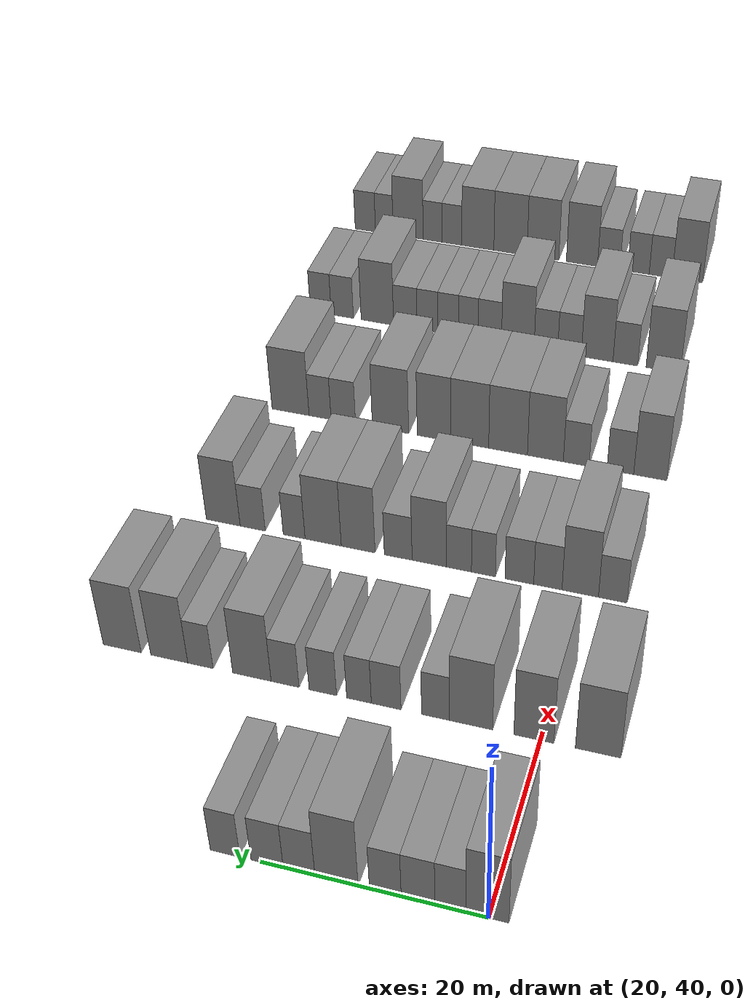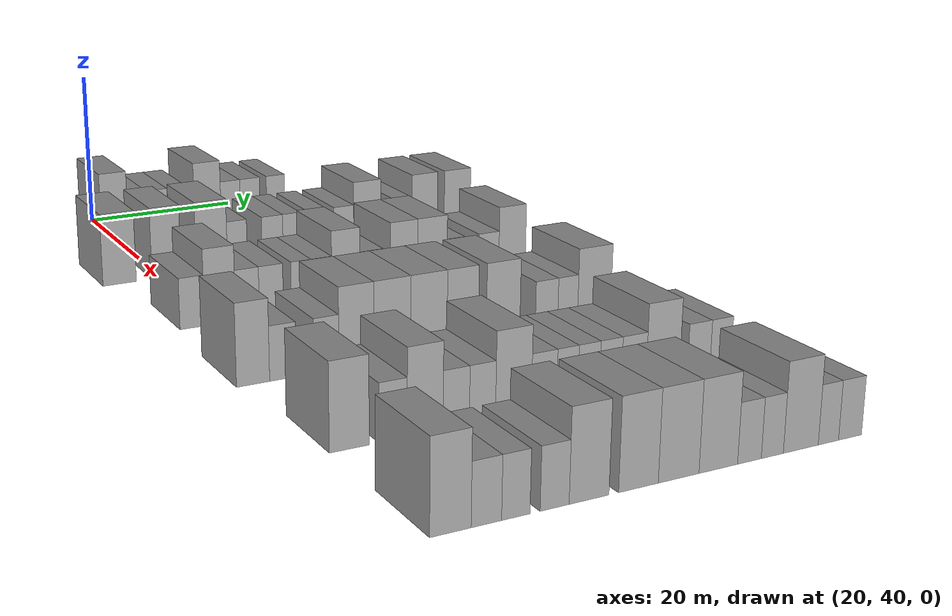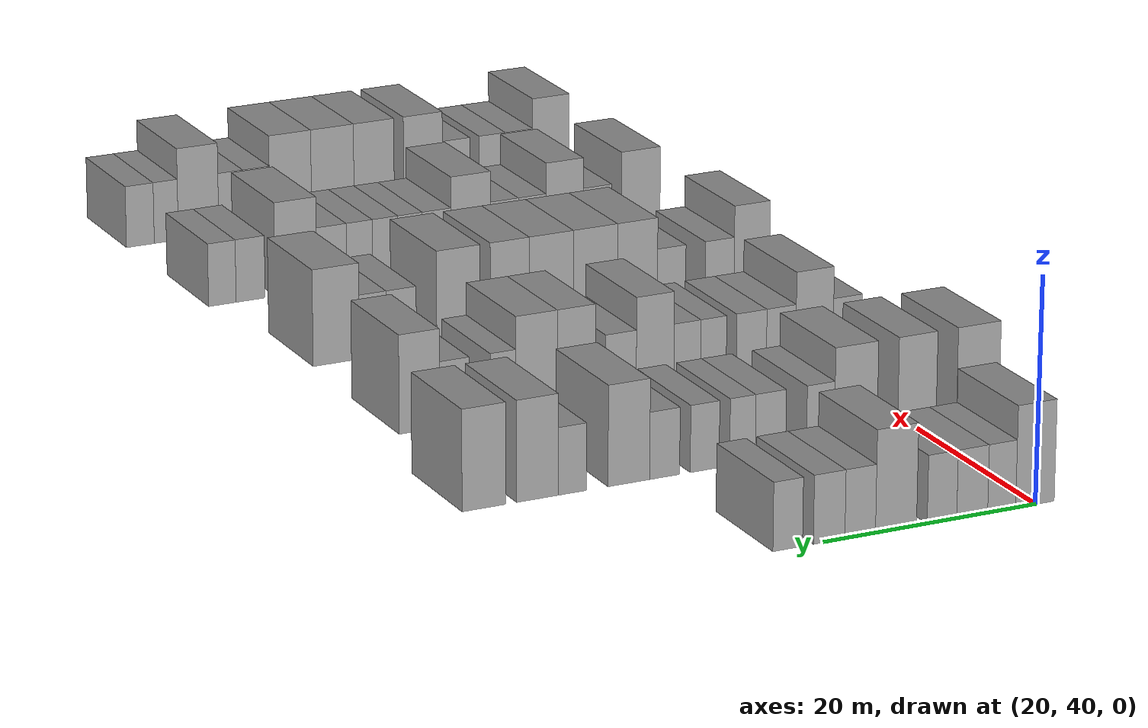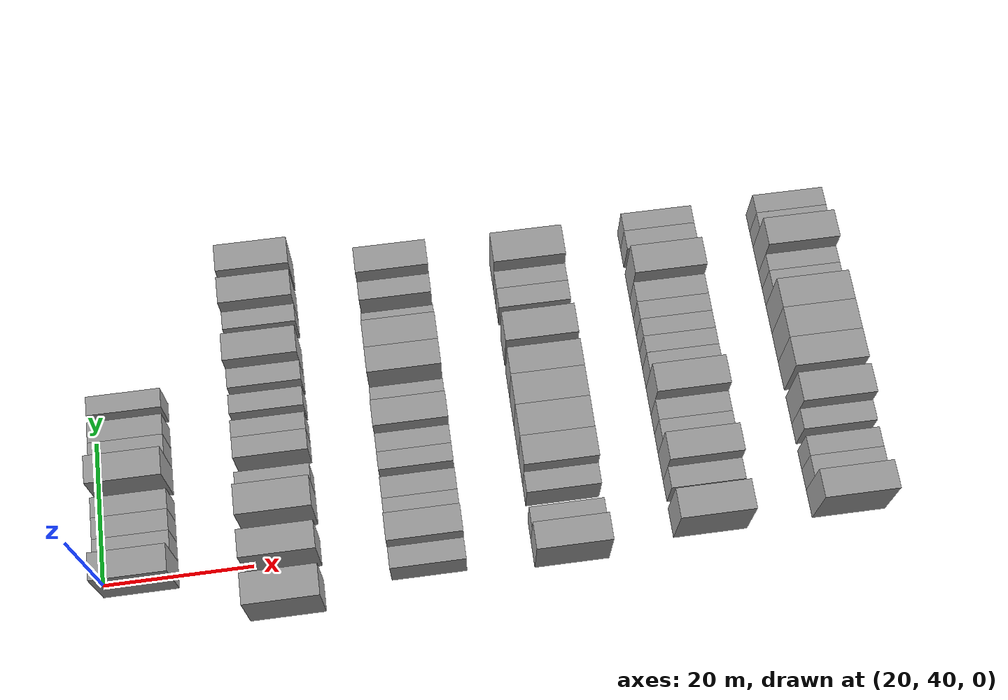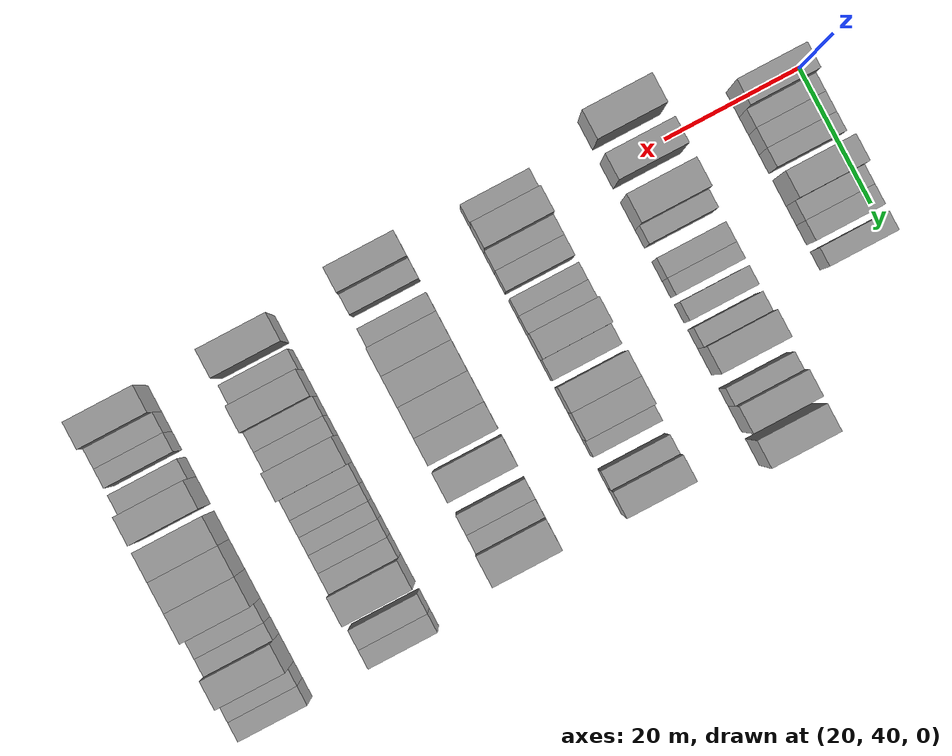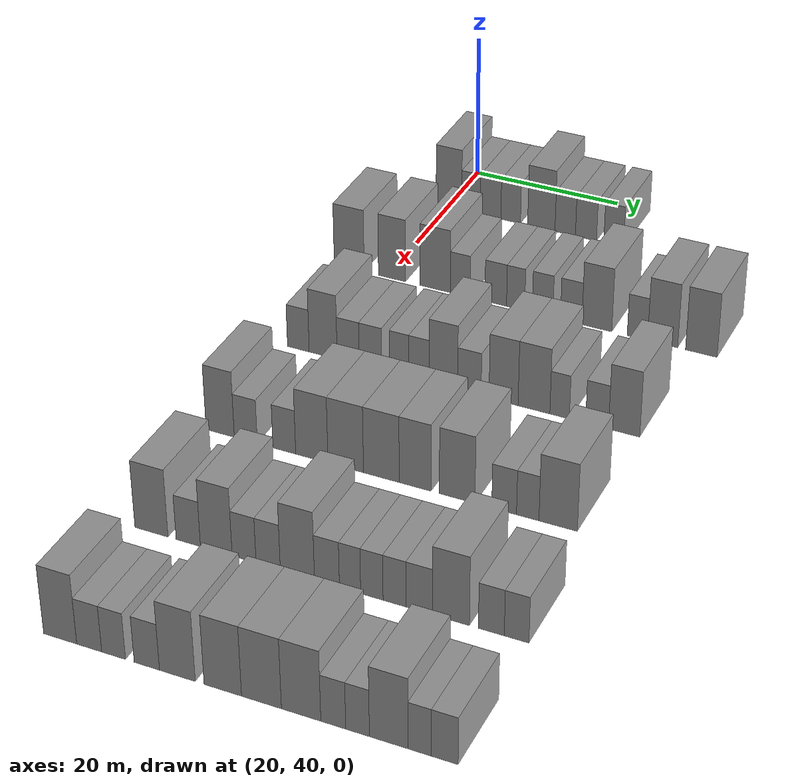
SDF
<sdf version="1.6">
 <world name="default">
  <model name="building_88">
   <static>1</static>
   <pose>25.0000 40.1347 0 0.000000 0.000000 0.000000</pose>
   <link name="link">
    <pose>0 0 4.50 0 0 0</pose>
    <collision name="collision"><geometry><box><size>10.0000 3.6821 9.0000</size></box></geometry></collision>
    <visual name="visual">
     <cast_shadows>0</cast_shadows>
     <geometry><box><size>10.0000 3.6821 9.0000</size></box></geometry>
     <material>
      <script>
       <uri>model://grey_wall/materials/scripts</uri>
       <uri>model://grey_wall/materials/textures</uri>
       <name>vrc/grey_wall</name>
      </script>
     </material>
    </visual>
   </link>
  </model>
  <model name="building_89">
   <static>1</static>
   <pose>25.0000 43.3047 0 0.000000 0.000000 0.000000</pose>
   <link name="link">
    <pose>0 0 3.00 0 0 0</pose>
    <collision name="collision"><geometry><box><size>10.0000 2.6580 6.0000</size></box></geometry></collision>
    <visual name="visual">
     <cast_shadows>0</cast_shadows>
     <geometry><box><size>10.0000 2.6580 6.0000</size></box></geometry>
     <material>
      <script>
       <uri>model://grey_wall/materials/scripts</uri>
       <uri>model://grey_wall/materials/textures</uri>
       <name>vrc/grey_wall</name>
      </script>
     </material>
    </visual>
   </link>
  </model>
  <model name="building_90">
   <static>1</static>
   <pose>25.0000 46.0963 0 0.000000 0.000000 0.000000</pose>
   <link name="link">
    <pose>0 0 3.00 0 0 0</pose>
    <collision name="collision"><geometry><box><size>10.0000 2.9250 6.0000</size></box></geometry></collision>
    <visual name="visual">
     <cast_shadows>0</cast_shadows>
     <geometry><box><size>10.0000 2.9250 6.0000</size></box></geometry>
     <material>
      <script>
       <uri>model://grey_wall/materials/scripts</uri>
       <uri>model://grey_wall/materials/textures</uri>
       <name>vrc/grey_wall</name>
      </script>
     </material>
    </visual>
   </link>
  </model>
  <model name="building_91">
   <static>1</static>
   <pose>25.0000 48.9484 0 0.000000 0.000000 0.000000</pose>
   <link name="link">
    <pose>0 0 3.00 0 0 0</pose>
    <collision name="collision"><geometry><box><size>10.0000 2.7791 6.0000</size></box></geometry></collision>
    <visual name="visual">
     <cast_shadows>0</cast_shadows>
     <geometry><box><size>10.0000 2.7791 6.0000</size></box></geometry>
     <material>
      <script>
       <uri>model://grey_wall/materials/scripts</uri>
       <uri>model://grey_wall/materials/textures</uri>
       <name>vrc/grey_wall</name>
      </script>
     </material>
    </visual>
   </link>
  </model>
  <model name="building_92">
   <static>1</static>
   <pose>25.0000 53.2542 0 0.000000 0.000000 0.000000</pose>
   <link name="link">
    <pose>0 0 4.50 0 0 0</pose>
    <collision name="collision"><geometry><box><size>10.0000 3.8325 9.0000</size></box></geometry></collision>
    <visual name="visual">
     <cast_shadows>0</cast_shadows>
     <geometry><box><size>10.0000 3.8325 9.0000</size></box></geometry>
     <material>
      <script>
       <uri>model://grey_wall/materials/scripts</uri>
       <uri>model://grey_wall/materials/textures</uri>
       <name>vrc/grey_wall</name>
      </script>
     </material>
    </visual>
   </link>
  </model>
  <model name="building_93">
   <static>1</static>
   <pose>25.0000 56.5913 0 0.000000 0.000000 0.000000</pose>
   <link name="link">
    <pose>0 0 3.00 0 0 0</pose>
    <collision name="collision"><geometry><box><size>10.0000 2.8417 6.0000</size></box></geometry></collision>
    <visual name="visual">
     <cast_shadows>0</cast_shadows>
     <geometry><box><size>10.0000 2.8417 6.0000</size></box></geometry>
     <material>
      <script>
       <uri>model://grey_wall/materials/scripts</uri>
       <uri>model://grey_wall/materials/textures</uri>
       <name>vrc/grey_wall</name>
      </script>
     </material>
    </visual>
   </link>
  </model>
  <model name="building_94">
   <static>1</static>
   <pose>25.0000 59.4693 0 0.000000 0.000000 0.000000</pose>
   <link name="link">
    <pose>0 0 3.00 0 0 0</pose>
    <collision name="collision"><geometry><box><size>10.0000 2.9143 6.0000</size></box></geometry></collision>
    <visual name="visual">
     <cast_shadows>0</cast_shadows>
     <geometry><box><size>10.0000 2.9143 6.0000</size></box></geometry>
     <material>
      <script>
       <uri>model://grey_wall/materials/scripts</uri>
       <uri>model://grey_wall/materials/textures</uri>
       <name>vrc/grey_wall</name>
      </script>
     </material>
    </visual>
   </link>
  </model>
  <model name="building_95">
   <static>1</static>
   <pose>25.0000 63.2848 0 0.000000 0.000000 0.000000</pose>
   <link name="link">
    <pose>0 0 3.00 0 0 0</pose>
    <collision name="collision"><geometry><box><size>10.0000 2.7167 6.0000</size></box></geometry></collision>
    <visual name="visual">
     <cast_shadows>0</cast_shadows>
     <geometry><box><size>10.0000 2.7167 6.0000</size></box></geometry>
     <material>
      <script>
       <uri>model://grey_wall/materials/scripts</uri>
       <uri>model://grey_wall/materials/textures</uri>
       <name>vrc/grey_wall</name>
      </script>
     </material>
    </visual>
   </link>
  </model>
  <model name="building_251">
   <static>1</static>
   <pose>44.0000 34.7093 0 0.000000 0.000000 0.000000</pose>
   <link name="link">
    <pose>0 0 4.50 0 0 0</pose>
    <collision name="collision"><geometry><box><size>10.0000 4.2011 9.0000</size></box></geometry></collision>
    <visual name="visual">
     <cast_shadows>0</cast_shadows>
     <geometry><box><size>10.0000 4.2011 9.0000</size></box></geometry>
     <material>
      <script>
       <uri>model://grey_wall/materials/scripts</uri>
       <uri>model://grey_wall/materials/textures</uri>
       <name>vrc/grey_wall</name>
      </script>
     </material>
    </visual>
   </link>
  </model>
  <model name="building_252">
   <static>1</static>
   <pose>44.0000 40.6884 0 0.000000 0.000000 0.000000</pose>
   <link name="link">
    <pose>0 0 4.50 0 0 0</pose>
    <collision name="collision"><geometry><box><size>10.0000 3.7571 9.0000</size></box></geometry></collision>
    <visual name="visual">
     <cast_shadows>0</cast_shadows>
     <geometry><box><size>10.0000 3.7571 9.0000</size></box></geometry>
     <material>
      <script>
       <uri>model://grey_wall/materials/scripts</uri>
       <uri>model://grey_wall/materials/textures</uri>
       <name>vrc/grey_wall</name>
      </script>
     </material>
    </visual>
   </link>
  </model>
  <model name="building_253">
   <static>1</static>
   <pose>44.0000 46.6342 0 0.000000 0.000000 0.000000</pose>
   <link name="link">
    <pose>0 0 4.50 0 0 0</pose>
    <collision name="collision"><geometry><box><size>10.0000 4.1346 9.0000</size></box></geometry></collision>
    <visual name="visual">
     <cast_shadows>0</cast_shadows>
     <geometry><box><size>10.0000 4.1346 9.0000</size></box></geometry>
     <material>
      <script>
       <uri>model://grey_wall/materials/scripts</uri>
       <uri>model://grey_wall/materials/textures</uri>
       <name>vrc/grey_wall</name>
      </script>
     </material>
    </visual>
   </link>
  </model>
  <model name="building_254">
   <static>1</static>
   <pose>44.0000 50.0399 0 0.000000 0.000000 0.000000</pose>
   <link name="link">
    <pose>0 0 3.00 0 0 0</pose>
    <collision name="collision"><geometry><box><size>10.0000 2.6768 6.0000</size></box></geometry></collision>
    <visual name="visual">
     <cast_shadows>0</cast_shadows>
     <geometry><box><size>10.0000 2.6768 6.0000</size></box></geometry>
     <material>
      <script>
       <uri>model://grey_wall/materials/scripts</uri>
       <uri>model://grey_wall/materials/textures</uri>
       <name>vrc/grey_wall</name>
      </script>
     </material>
    </visual>
   </link>
  </model>
  <model name="building_255">
   <static>1</static>
   <pose>44.0000 54.8276 0 0.000000 0.000000 0.000000</pose>
   <link name="link">
    <pose>0 0 3.00 0 0 0</pose>
    <collision name="collision"><geometry><box><size>10.0000 2.8987 6.0000</size></box></geometry></collision>
    <visual name="visual">
     <cast_shadows>0</cast_shadows>
     <geometry><box><size>10.0000 2.8987 6.0000</size></box></geometry>
     <material>
      <script>
       <uri>model://grey_wall/materials/scripts</uri>
       <uri>model://grey_wall/materials/textures</uri>
       <name>vrc/grey_wall</name>
      </script>
     </material>
    </visual>
   </link>
  </model>
  <model name="building_256">
   <static>1</static>
   <pose>44.0000 57.4905 0 0.000000 0.000000 0.000000</pose>
   <link name="link">
    <pose>0 0 3.00 0 0 0</pose>
    <collision name="collision"><geometry><box><size>10.0000 2.4271 6.0000</size></box></geometry></collision>
    <visual name="visual">
     <cast_shadows>0</cast_shadows>
     <geometry><box><size>10.0000 2.4271 6.0000</size></box></geometry>
     <material>
      <script>
       <uri>model://grey_wall/materials/scripts</uri>
       <uri>model://grey_wall/materials/textures</uri>
       <name>vrc/grey_wall</name>
      </script>
     </material>
    </visual>
   </link>
  </model>
  <model name="building_257">
   <static>1</static>
   <pose>44.0000 61.0678 0 0.000000 0.000000 0.000000</pose>
   <link name="link">
    <pose>0 0 3.00 0 0 0</pose>
    <collision name="collision"><geometry><box><size>10.0000 2.7275 6.0000</size></box></geometry></collision>
    <visual name="visual">
     <cast_shadows>0</cast_shadows>
     <geometry><box><size>10.0000 2.7275 6.0000</size></box></geometry>
     <material>
      <script>
       <uri>model://grey_wall/materials/scripts</uri>
       <uri>model://grey_wall/materials/textures</uri>
       <name>vrc/grey_wall</name>
      </script>
     </material>
    </visual>
   </link>
  </model>
  <model name="building_258">
   <static>1</static>
   <pose>44.0000 64.8363 0 0.000000 0.000000 0.000000</pose>
   <link name="link">
    <pose>0 0 3.00 0 0 0</pose>
    <collision name="collision"><geometry><box><size>10.0000 2.8095 6.0000</size></box></geometry></collision>
    <visual name="visual">
     <cast_shadows>0</cast_shadows>
     <geometry><box><size>10.0000 2.8095 6.0000</size></box></geometry>
     <material>
      <script>
       <uri>model://grey_wall/materials/scripts</uri>
       <uri>model://grey_wall/materials/textures</uri>
       <name>vrc/grey_wall</name>
      </script>
     </material>
    </visual>
   </link>
  </model>
  <model name="building_259">
   <static>1</static>
   <pose>44.0000 68.1875 0 0.000000 0.000000 0.000000</pose>
   <link name="link">
    <pose>0 0 4.50 0 0 0</pose>
    <collision name="collision"><geometry><box><size>10.0000 3.8930 9.0000</size></box></geometry></collision>
    <visual name="visual">
     <cast_shadows>0</cast_shadows>
     <geometry><box><size>10.0000 3.8930 9.0000</size></box></geometry>
     <material>
      <script>
       <uri>model://grey_wall/materials/scripts</uri>
       <uri>model://grey_wall/materials/textures</uri>
       <name>vrc/grey_wall</name>
      </script>
     </material>
    </visual>
   </link>
  </model>
  <model name="building_260">
   <static>1</static>
   <pose>44.0000 73.4386 0 0.000000 0.000000 0.000000</pose>
   <link name="link">
    <pose>0 0 3.00 0 0 0</pose>
    <collision name="collision"><geometry><box><size>10.0000 2.6091 6.0000</size></box></geometry></collision>
    <visual name="visual">
     <cast_shadows>0</cast_shadows>
     <geometry><box><size>10.0000 2.6091 6.0000</size></box></geometry>
     <material>
      <script>
       <uri>model://grey_wall/materials/scripts</uri>
       <uri>model://grey_wall/materials/textures</uri>
       <name>vrc/grey_wall</name>
      </script>
     </material>
    </visual>
   </link>
  </model>
  <model name="building_261">
   <static>1</static>
   <pose>44.0000 76.6648 0 0.000000 0.000000 0.000000</pose>
   <link name="link">
    <pose>0 0 4.50 0 0 0</pose>
    <collision name="collision"><geometry><box><size>10.0000 3.8433 9.0000</size></box></geometry></collision>
    <visual name="visual">
     <cast_shadows>0</cast_shadows>
     <geometry><box><size>10.0000 3.8433 9.0000</size></box></geometry>
     <material>
      <script>
       <uri>model://grey_wall/materials/scripts</uri>
       <uri>model://grey_wall/materials/textures</uri>
       <name>vrc/grey_wall</name>
      </script>
     </material>
    </visual>
   </link>
  </model>
  <model name="building_262">
   <static>1</static>
   <pose>44.0000 81.5735 0 0.000000 0.000000 0.000000</pose>
   <link name="link">
    <pose>0 0 4.50 0 0 0</pose>
    <collision name="collision"><geometry><box><size>10.0000 3.9742 9.0000</size></box></geometry></collision>
    <visual name="visual">
     <cast_shadows>0</cast_shadows>
     <geometry><box><size>10.0000 3.9742 9.0000</size></box></geometry>
     <material>
      <script>
       <uri>model://grey_wall/materials/scripts</uri>
       <uri>model://grey_wall/materials/textures</uri>
       <name>vrc/grey_wall</name>
      </script>
     </material>
    </visual>
   </link>
  </model>
  <model name="building_434">
   <static>1</static>
   <pose>63.0000 37.0902 0 0.000000 0.000000 0.000000</pose>
   <link name="link">
    <pose>0 0 3.00 0 0 0</pose>
    <collision name="collision"><geometry><box><size>10.0000 2.9083 6.0000</size></box></geometry></collision>
    <visual name="visual">
     <cast_shadows>0</cast_shadows>
     <geometry><box><size>10.0000 2.9083 6.0000</size></box></geometry>
     <material>
      <script>
       <uri>model://grey_wall/materials/scripts</uri>
       <uri>model://grey_wall/materials/textures</uri>
       <name>vrc/grey_wall</name>
      </script>
     </material>
    </visual>
   </link>
  </model>
  <model name="building_435">
   <static>1</static>
   <pose>63.0000 40.4109 0 0.000000 0.000000 0.000000</pose>
   <link name="link">
    <pose>0 0 4.50 0 0 0</pose>
    <collision name="collision"><geometry><box><size>10.0000 3.7331 9.0000</size></box></geometry></collision>
    <visual name="visual">
     <cast_shadows>0</cast_shadows>
     <geometry><box><size>10.0000 3.7331 9.0000</size></box></geometry>
     <material>
      <script>
       <uri>model://grey_wall/materials/scripts</uri>
       <uri>model://grey_wall/materials/textures</uri>
       <name>vrc/grey_wall</name>
      </script>
     </material>
    </visual>
   </link>
  </model>
  <model name="building_436">
   <static>1</static>
   <pose>63.0000 43.7369 0 0.000000 0.000000 0.000000</pose>
   <link name="link">
    <pose>0 0 3.00 0 0 0</pose>
    <collision name="collision"><geometry><box><size>10.0000 2.9188 6.0000</size></box></geometry></collision>
    <visual name="visual">
     <cast_shadows>0</cast_shadows>
     <geometry><box><size>10.0000 2.9188 6.0000</size></box></geometry>
     <material>
      <script>
       <uri>model://grey_wall/materials/scripts</uri>
       <uri>model://grey_wall/materials/textures</uri>
       <name>vrc/grey_wall</name>
      </script>
     </material>
    </visual>
   </link>
  </model>
  <model name="building_437">
   <static>1</static>
   <pose>63.0000 46.6870 0 0.000000 0.000000 0.000000</pose>
   <link name="link">
    <pose>0 0 3.00 0 0 0</pose>
    <collision name="collision"><geometry><box><size>10.0000 2.9813 6.0000</size></box></geometry></collision>
    <visual name="visual">
     <cast_shadows>0</cast_shadows>
     <geometry><box><size>10.0000 2.9813 6.0000</size></box></geometry>
     <material>
      <script>
       <uri>model://grey_wall/materials/scripts</uri>
       <uri>model://grey_wall/materials/textures</uri>
       <name>vrc/grey_wall</name>
      </script>
     </material>
    </visual>
   </link>
  </model>
  <model name="building_438">
   <static>1</static>
   <pose>63.0000 50.4399 0 0.000000 0.000000 0.000000</pose>
   <link name="link">
    <pose>0 0 3.00 0 0 0</pose>
    <collision name="collision"><geometry><box><size>10.0000 2.5245 6.0000</size></box></geometry></collision>
    <visual name="visual">
     <cast_shadows>0</cast_shadows>
     <geometry><box><size>10.0000 2.5245 6.0000</size></box></geometry>
     <material>
      <script>
       <uri>model://grey_wall/materials/scripts</uri>
       <uri>model://grey_wall/materials/textures</uri>
       <name>vrc/grey_wall</name>
      </script>
     </material>
    </visual>
   </link>
  </model>
  <model name="building_439">
   <static>1</static>
   <pose>63.0000 53.0123 0 0.000000 0.000000 0.000000</pose>
   <link name="link">
    <pose>0 0 3.00 0 0 0</pose>
    <collision name="collision"><geometry><box><size>10.0000 2.6203 6.0000</size></box></geometry></collision>
    <visual name="visual">
     <cast_shadows>0</cast_shadows>
     <geometry><box><size>10.0000 2.6203 6.0000</size></box></geometry>
     <material>
      <script>
       <uri>model://grey_wall/materials/scripts</uri>
       <uri>model://grey_wall/materials/textures</uri>
       <name>vrc/grey_wall</name>
      </script>
     </material>
    </visual>
   </link>
  </model>
  <model name="building_440">
   <static>1</static>
   <pose>63.0000 56.1586 0 0.000000 0.000000 0.000000</pose>
   <link name="link">
    <pose>0 0 4.50 0 0 0</pose>
    <collision name="collision"><geometry><box><size>10.0000 3.6724 9.0000</size></box></geometry></collision>
    <visual name="visual">
     <cast_shadows>0</cast_shadows>
     <geometry><box><size>10.0000 3.6724 9.0000</size></box></geometry>
     <material>
      <script>
       <uri>model://grey_wall/materials/scripts</uri>
       <uri>model://grey_wall/materials/textures</uri>
       <name>vrc/grey_wall</name>
      </script>
     </material>
    </visual>
   </link>
  </model>
  <model name="building_441">
   <static>1</static>
   <pose>63.0000 59.4880 0 0.000000 0.000000 0.000000</pose>
   <link name="link">
    <pose>0 0 3.00 0 0 0</pose>
    <collision name="collision"><geometry><box><size>10.0000 2.9863 6.0000</size></box></geometry></collision>
    <visual name="visual">
     <cast_shadows>0</cast_shadows>
     <geometry><box><size>10.0000 2.9863 6.0000</size></box></geometry>
     <material>
      <script>
       <uri>model://grey_wall/materials/scripts</uri>
       <uri>model://grey_wall/materials/textures</uri>
       <name>vrc/grey_wall</name>
      </script>
     </material>
    </visual>
   </link>
  </model>
  <model name="building_442">
   <static>1</static>
   <pose>63.0000 63.8151 0 0.000000 0.000000 0.000000</pose>
   <link name="link">
    <pose>0 0 4.50 0 0 0</pose>
    <collision name="collision"><geometry><box><size>10.0000 3.6678 9.0000</size></box></geometry></collision>
    <visual name="visual">
     <cast_shadows>0</cast_shadows>
     <geometry><box><size>10.0000 3.6678 9.0000</size></box></geometry>
     <material>
      <script>
       <uri>model://grey_wall/materials/scripts</uri>
       <uri>model://grey_wall/materials/textures</uri>
       <name>vrc/grey_wall</name>
      </script>
     </material>
    </visual>
   </link>
  </model>
  <model name="building_443">
   <static>1</static>
   <pose>63.0000 67.6348 0 0.000000 0.000000 0.000000</pose>
   <link name="link">
    <pose>0 0 4.50 0 0 0</pose>
    <collision name="collision"><geometry><box><size>10.0000 3.9717 9.0000</size></box></geometry></collision>
    <visual name="visual">
     <cast_shadows>0</cast_shadows>
     <geometry><box><size>10.0000 3.9717 9.0000</size></box></geometry>
     <material>
      <script>
       <uri>model://grey_wall/materials/scripts</uri>
       <uri>model://grey_wall/materials/textures</uri>
       <name>vrc/grey_wall</name>
      </script>
     </material>
    </visual>
   </link>
  </model>
  <model name="building_444">
   <static>1</static>
   <pose>63.0000 70.8278 0 0.000000 0.000000 0.000000</pose>
   <link name="link">
    <pose>0 0 3.00 0 0 0</pose>
    <collision name="collision"><geometry><box><size>10.0000 2.4143 6.0000</size></box></geometry></collision>
    <visual name="visual">
     <cast_shadows>0</cast_shadows>
     <geometry><box><size>10.0000 2.4143 6.0000</size></box></geometry>
     <material>
      <script>
       <uri>model://grey_wall/materials/scripts</uri>
       <uri>model://grey_wall/materials/textures</uri>
       <name>vrc/grey_wall</name>
      </script>
     </material>
    </visual>
   </link>
  </model>
  <model name="building_445">
   <static>1</static>
   <pose>63.0000 75.4388 0 0.000000 0.000000 0.000000</pose>
   <link name="link">
    <pose>0 0 3.00 0 0 0</pose>
    <collision name="collision"><geometry><box><size>10.0000 2.8077 6.0000</size></box></geometry></collision>
    <visual name="visual">
     <cast_shadows>0</cast_shadows>
     <geometry><box><size>10.0000 2.8077 6.0000</size></box></geometry>
     <material>
      <script>
       <uri>model://grey_wall/materials/scripts</uri>
       <uri>model://grey_wall/materials/textures</uri>
       <name>vrc/grey_wall</name>
      </script>
     </material>
    </visual>
   </link>
  </model>
  <model name="building_446">
   <static>1</static>
   <pose>63.0000 78.7438 0 0.000000 0.000000 0.000000</pose>
   <link name="link">
    <pose>0 0 4.50 0 0 0</pose>
    <collision name="collision"><geometry><box><size>10.0000 3.8024 9.0000</size></box></geometry></collision>
    <visual name="visual">
     <cast_shadows>0</cast_shadows>
     <geometry><box><size>10.0000 3.8024 9.0000</size></box></geometry>
     <material>
      <script>
       <uri>model://grey_wall/materials/scripts</uri>
       <uri>model://grey_wall/materials/textures</uri>
       <name>vrc/grey_wall</name>
      </script>
     </material>
    </visual>
   </link>
  </model>
  <model name="building_619">
   <static>1</static>
   <pose>82.0000 36.6875 0 0.000000 0.000000 0.000000</pose>
   <link name="link">
    <pose>0 0 4.50 0 0 0</pose>
    <collision name="collision"><geometry><box><size>10.0000 3.6415 9.0000</size></box></geometry></collision>
    <visual name="visual">
     <cast_shadows>0</cast_shadows>
     <geometry><box><size>10.0000 3.6415 9.0000</size></box></geometry>
     <material>
      <script>
       <uri>model://grey_wall/materials/scripts</uri>
       <uri>model://grey_wall/materials/textures</uri>
       <name>vrc/grey_wall</name>
      </script>
     </material>
    </visual>
   </link>
  </model>
  <model name="building_620">
   <static>1</static>
   <pose>82.0000 39.9862 0 0.000000 0.000000 0.000000</pose>
   <link name="link">
    <pose>0 0 3.00 0 0 0</pose>
    <collision name="collision"><geometry><box><size>10.0000 2.9561 6.0000</size></box></geometry></collision>
    <visual name="visual">
     <cast_shadows>0</cast_shadows>
     <geometry><box><size>10.0000 2.9561 6.0000</size></box></geometry>
     <material>
      <script>
       <uri>model://grey_wall/materials/scripts</uri>
       <uri>model://grey_wall/materials/textures</uri>
       <name>vrc/grey_wall</name>
      </script>
     </material>
    </visual>
   </link>
  </model>
  <model name="building_621">
   <static>1</static>
   <pose>82.0000 44.9042 0 0.000000 0.000000 0.000000</pose>
   <link name="link">
    <pose>0 0 3.00 0 0 0</pose>
    <collision name="collision"><geometry><box><size>10.0000 2.8798 6.0000</size></box></geometry></collision>
    <visual name="visual">
     <cast_shadows>0</cast_shadows>
     <geometry><box><size>10.0000 2.8798 6.0000</size></box></geometry>
     <material>
      <script>
       <uri>model://grey_wall/materials/scripts</uri>
       <uri>model://grey_wall/materials/textures</uri>
       <name>vrc/grey_wall</name>
      </script>
     </material>
    </visual>
   </link>
  </model>
  <model name="building_622">
   <static>1</static>
   <pose>82.0000 48.3745 0 0.000000 0.000000 0.000000</pose>
   <link name="link">
    <pose>0 0 4.50 0 0 0</pose>
    <collision name="collision"><geometry><box><size>10.0000 4.0608 9.0000</size></box></geometry></collision>
    <visual name="visual">
     <cast_shadows>0</cast_shadows>
     <geometry><box><size>10.0000 4.0608 9.0000</size></box></geometry>
     <material>
      <script>
       <uri>model://grey_wall/materials/scripts</uri>
       <uri>model://grey_wall/materials/textures</uri>
       <name>vrc/grey_wall</name>
      </script>
     </material>
    </visual>
   </link>
  </model>
  <model name="building_623">
   <static>1</static>
   <pose>82.0000 52.6140 0 0.000000 0.000000 0.000000</pose>
   <link name="link">
    <pose>0 0 4.50 0 0 0</pose>
    <collision name="collision"><geometry><box><size>10.0000 4.4183 9.0000</size></box></geometry></collision>
    <visual name="visual">
     <cast_shadows>0</cast_shadows>
     <geometry><box><size>10.0000 4.4183 9.0000</size></box></geometry>
     <material>
      <script>
       <uri>model://grey_wall/materials/scripts</uri>
       <uri>model://grey_wall/materials/textures</uri>
       <name>vrc/grey_wall</name>
      </script>
     </material>
    </visual>
   </link>
  </model>
  <model name="building_624">
   <static>1</static>
   <pose>82.0000 57.0221 0 0.000000 0.000000 0.000000</pose>
   <link name="link">
    <pose>0 0 4.50 0 0 0</pose>
    <collision name="collision"><geometry><box><size>10.0000 4.3977 9.0000</size></box></geometry></collision>
    <visual name="visual">
     <cast_shadows>0</cast_shadows>
     <geometry><box><size>10.0000 4.3977 9.0000</size></box></geometry>
     <material>
      <script>
       <uri>model://grey_wall/materials/scripts</uri>
       <uri>model://grey_wall/materials/textures</uri>
       <name>vrc/grey_wall</name>
      </script>
     </material>
    </visual>
   </link>
  </model>
  <model name="building_625">
   <static>1</static>
   <pose>82.0000 61.1562 0 0.000000 0.000000 0.000000</pose>
   <link name="link">
    <pose>0 0 4.50 0 0 0</pose>
    <collision name="collision"><geometry><box><size>10.0000 3.8706 9.0000</size></box></geometry></collision>
    <visual name="visual">
     <cast_shadows>0</cast_shadows>
     <geometry><box><size>10.0000 3.8706 9.0000</size></box></geometry>
     <material>
      <script>
       <uri>model://grey_wall/materials/scripts</uri>
       <uri>model://grey_wall/materials/textures</uri>
       <name>vrc/grey_wall</name>
      </script>
     </material>
    </visual>
   </link>
  </model>
  <model name="building_626">
   <static>1</static>
   <pose>82.0000 66.2286 0 0.000000 0.000000 0.000000</pose>
   <link name="link">
    <pose>0 0 4.50 0 0 0</pose>
    <collision name="collision"><geometry><box><size>10.0000 4.2742 9.0000</size></box></geometry></collision>
    <visual name="visual">
     <cast_shadows>0</cast_shadows>
     <geometry><box><size>10.0000 4.2742 9.0000</size></box></geometry>
     <material>
      <script>
       <uri>model://grey_wall/materials/scripts</uri>
       <uri>model://grey_wall/materials/textures</uri>
       <name>vrc/grey_wall</name>
      </script>
     </material>
    </visual>
   </link>
  </model>
  <model name="building_627">
   <static>1</static>
   <pose>82.0000 71.8278 0 0.000000 0.000000 0.000000</pose>
   <link name="link">
    <pose>0 0 3.00 0 0 0</pose>
    <collision name="collision"><geometry><box><size>10.0000 2.9242 6.0000</size></box></geometry></collision>
    <visual name="visual">
     <cast_shadows>0</cast_shadows>
     <geometry><box><size>10.0000 2.9242 6.0000</size></box></geometry>
     <material>
      <script>
       <uri>model://grey_wall/materials/scripts</uri>
       <uri>model://grey_wall/materials/textures</uri>
       <name>vrc/grey_wall</name>
      </script>
     </material>
    </visual>
   </link>
  </model>
  <model name="building_628">
   <static>1</static>
   <pose>82.0000 74.6081 0 0.000000 0.000000 0.000000</pose>
   <link name="link">
    <pose>0 0 3.00 0 0 0</pose>
    <collision name="collision"><geometry><box><size>10.0000 2.6364 6.0000</size></box></geometry></collision>
    <visual name="visual">
     <cast_shadows>0</cast_shadows>
     <geometry><box><size>10.0000 2.6364 6.0000</size></box></geometry>
     <material>
      <script>
       <uri>model://grey_wall/materials/scripts</uri>
       <uri>model://grey_wall/materials/textures</uri>
       <name>vrc/grey_wall</name>
      </script>
     </material>
    </visual>
   </link>
  </model>
  <model name="building_629">
   <static>1</static>
   <pose>82.0000 78.1593 0 0.000000 0.000000 0.000000</pose>
   <link name="link">
    <pose>0 0 4.50 0 0 0</pose>
    <collision name="collision"><geometry><box><size>10.0000 4.4660 9.0000</size></box></geometry></collision>
    <visual name="visual">
     <cast_shadows>0</cast_shadows>
     <geometry><box><size>10.0000 4.4660 9.0000</size></box></geometry>
     <material>
      <script>
       <uri>model://grey_wall/materials/scripts</uri>
       <uri>model://grey_wall/materials/textures</uri>
       <name>vrc/grey_wall</name>
      </script>
     </material>
    </visual>
   </link>
  </model>
  <model name="building_800">
   <static>1</static>
   <pose>101.0000 38.5232 0 0.000000 0.000000 0.000000</pose>
   <link name="link">
    <pose>0 0 4.50 0 0 0</pose>
    <collision name="collision"><geometry><box><size>10.0000 4.0839 9.0000</size></box></geometry></collision>
    <visual name="visual">
     <cast_shadows>0</cast_shadows>
     <geometry><box><size>10.0000 4.0839 9.0000</size></box></geometry>
     <material>
      <script>
       <uri>model://grey_wall/materials/scripts</uri>
       <uri>model://grey_wall/materials/textures</uri>
       <name>vrc/grey_wall</name>
      </script>
     </material>
    </visual>
   </link>
  </model>
  <model name="building_801">
   <static>1</static>
   <pose>101.0000 43.0505 0 0.000000 0.000000 0.000000</pose>
   <link name="link">
    <pose>0 0 3.00 0 0 0</pose>
    <collision name="collision"><geometry><box><size>10.0000 2.9705 6.0000</size></box></geometry></collision>
    <visual name="visual">
     <cast_shadows>0</cast_shadows>
     <geometry><box><size>10.0000 2.9705 6.0000</size></box></geometry>
     <material>
      <script>
       <uri>model://grey_wall/materials/scripts</uri>
       <uri>model://grey_wall/materials/textures</uri>
       <name>vrc/grey_wall</name>
      </script>
     </material>
    </visual>
   </link>
  </model>
  <model name="building_802">
   <static>1</static>
   <pose>101.0000 46.4548 0 0.000000 0.000000 0.000000</pose>
   <link name="link">
    <pose>0 0 4.50 0 0 0</pose>
    <collision name="collision"><geometry><box><size>10.0000 3.8382 9.0000</size></box></geometry></collision>
    <visual name="visual">
     <cast_shadows>0</cast_shadows>
     <geometry><box><size>10.0000 3.8382 9.0000</size></box></geometry>
     <material>
      <script>
       <uri>model://grey_wall/materials/scripts</uri>
       <uri>model://grey_wall/materials/textures</uri>
       <name>vrc/grey_wall</name>
      </script>
     </material>
    </visual>
   </link>
  </model>
  <model name="building_803">
   <static>1</static>
   <pose>101.0000 49.8082 0 0.000000 0.000000 0.000000</pose>
   <link name="link">
    <pose>0 0 3.00 0 0 0</pose>
    <collision name="collision"><geometry><box><size>10.0000 2.8686 6.0000</size></box></geometry></collision>
    <visual name="visual">
     <cast_shadows>0</cast_shadows>
     <geometry><box><size>10.0000 2.8686 6.0000</size></box></geometry>
     <material>
      <script>
       <uri>model://grey_wall/materials/scripts</uri>
       <uri>model://grey_wall/materials/textures</uri>
       <name>vrc/grey_wall</name>
      </script>
     </material>
    </visual>
   </link>
  </model>
  <model name="building_804">
   <static>1</static>
   <pose>101.0000 52.6882 0 0.000000 0.000000 0.000000</pose>
   <link name="link">
    <pose>0 0 3.00 0 0 0</pose>
    <collision name="collision"><geometry><box><size>10.0000 2.8915 6.0000</size></box></geometry></collision>
    <visual name="visual">
     <cast_shadows>0</cast_shadows>
     <geometry><box><size>10.0000 2.8915 6.0000</size></box></geometry>
     <material>
      <script>
       <uri>model://grey_wall/materials/scripts</uri>
       <uri>model://grey_wall/materials/textures</uri>
       <name>vrc/grey_wall</name>
      </script>
     </material>
    </visual>
   </link>
  </model>
  <model name="building_805">
   <static>1</static>
   <pose>101.0000 56.1517 0 0.000000 0.000000 0.000000</pose>
   <link name="link">
    <pose>0 0 4.50 0 0 0</pose>
    <collision name="collision"><geometry><box><size>10.0000 4.0355 9.0000</size></box></geometry></collision>
    <visual name="visual">
     <cast_shadows>0</cast_shadows>
     <geometry><box><size>10.0000 4.0355 9.0000</size></box></geometry>
     <material>
      <script>
       <uri>model://grey_wall/materials/scripts</uri>
       <uri>model://grey_wall/materials/textures</uri>
       <name>vrc/grey_wall</name>
      </script>
     </material>
    </visual>
   </link>
  </model>
  <model name="building_806">
   <static>1</static>
   <pose>101.0000 59.6257 0 0.000000 0.000000 0.000000</pose>
   <link name="link">
    <pose>0 0 3.00 0 0 0</pose>
    <collision name="collision"><geometry><box><size>10.0000 2.9125 6.0000</size></box></geometry></collision>
    <visual name="visual">
     <cast_shadows>0</cast_shadows>
     <geometry><box><size>10.0000 2.9125 6.0000</size></box></geometry>
     <material>
      <script>
       <uri>model://grey_wall/materials/scripts</uri>
       <uri>model://grey_wall/materials/textures</uri>
       <name>vrc/grey_wall</name>
      </script>
     </material>
    </visual>
   </link>
  </model>
  <model name="building_807">
   <static>1</static>
   <pose>101.0000 62.3129 0 0.000000 0.000000 0.000000</pose>
   <link name="link">
    <pose>0 0 3.00 0 0 0</pose>
    <collision name="collision"><geometry><box><size>10.0000 2.4618 6.0000</size></box></geometry></collision>
    <visual name="visual">
     <cast_shadows>0</cast_shadows>
     <geometry><box><size>10.0000 2.4618 6.0000</size></box></geometry>
     <material>
      <script>
       <uri>model://grey_wall/materials/scripts</uri>
       <uri>model://grey_wall/materials/textures</uri>
       <name>vrc/grey_wall</name>
      </script>
     </material>
    </visual>
   </link>
  </model>
  <model name="building_808">
   <static>1</static>
   <pose>101.0000 64.8359 0 0.000000 0.000000 0.000000</pose>
   <link name="link">
    <pose>0 0 3.00 0 0 0</pose>
    <collision name="collision"><geometry><box><size>10.0000 2.5842 6.0000</size></box></geometry></collision>
    <visual name="visual">
     <cast_shadows>0</cast_shadows>
     <geometry><box><size>10.0000 2.5842 6.0000</size></box></geometry>
     <material>
      <script>
       <uri>model://grey_wall/materials/scripts</uri>
       <uri>model://grey_wall/materials/textures</uri>
       <name>vrc/grey_wall</name>
      </script>
     </material>
    </visual>
   </link>
  </model>
  <model name="building_809">
   <static>1</static>
   <pose>101.0000 67.4386 0 0.000000 0.000000 0.000000</pose>
   <link name="link">
    <pose>0 0 3.00 0 0 0</pose>
    <collision name="collision"><geometry><box><size>10.0000 2.6211 6.0000</size></box></geometry></collision>
    <visual name="visual">
     <cast_shadows>0</cast_shadows>
     <geometry><box><size>10.0000 2.6211 6.0000</size></box></geometry>
     <material>
      <script>
       <uri>model://grey_wall/materials/scripts</uri>
       <uri>model://grey_wall/materials/textures</uri>
       <name>vrc/grey_wall</name>
      </script>
     </material>
    </visual>
   </link>
  </model>
  <model name="building_810">
   <static>1</static>
   <pose>101.0000 70.2480 0 0.000000 0.000000 0.000000</pose>
   <link name="link">
    <pose>0 0 3.00 0 0 0</pose>
    <collision name="collision"><geometry><box><size>10.0000 2.9977 6.0000</size></box></geometry></collision>
    <visual name="visual">
     <cast_shadows>0</cast_shadows>
     <geometry><box><size>10.0000 2.9977 6.0000</size></box></geometry>
     <material>
      <script>
       <uri>model://grey_wall/materials/scripts</uri>
       <uri>model://grey_wall/materials/textures</uri>
       <name>vrc/grey_wall</name>
      </script>
     </material>
    </visual>
   </link>
  </model>
  <model name="building_811">
   <static>1</static>
   <pose>101.0000 73.8276 0 0.000000 0.000000 0.000000</pose>
   <link name="link">
    <pose>0 0 4.50 0 0 0</pose>
    <collision name="collision"><geometry><box><size>10.0000 4.1614 9.0000</size></box></geometry></collision>
    <visual name="visual">
     <cast_shadows>0</cast_shadows>
     <geometry><box><size>10.0000 4.1614 9.0000</size></box></geometry>
     <material>
      <script>
       <uri>model://grey_wall/materials/scripts</uri>
       <uri>model://grey_wall/materials/textures</uri>
       <name>vrc/grey_wall</name>
      </script>
     </material>
    </visual>
   </link>
  </model>
  <model name="building_812">
   <static>1</static>
   <pose>101.0000 78.3442 0 0.000000 0.000000 0.000000</pose>
   <link name="link">
    <pose>0 0 3.00 0 0 0</pose>
    <collision name="collision"><geometry><box><size>10.0000 2.8718 6.0000</size></box></geometry></collision>
    <visual name="visual">
     <cast_shadows>0</cast_shadows>
     <geometry><box><size>10.0000 2.8718 6.0000</size></box></geometry>
     <material>
      <script>
       <uri>model://grey_wall/materials/scripts</uri>
       <uri>model://grey_wall/materials/textures</uri>
       <name>vrc/grey_wall</name>
      </script>
     </material>
    </visual>
   </link>
  </model>
  <model name="building_813">
   <static>1</static>
   <pose>101.0000 81.1378 0 0.000000 0.000000 0.000000</pose>
   <link name="link">
    <pose>0 0 3.00 0 0 0</pose>
    <collision name="collision"><geometry><box><size>10.0000 2.7154 6.0000</size></box></geometry></collision>
    <visual name="visual">
     <cast_shadows>0</cast_shadows>
     <geometry><box><size>10.0000 2.7154 6.0000</size></box></geometry>
     <material>
      <script>
       <uri>model://grey_wall/materials/scripts</uri>
       <uri>model://grey_wall/materials/textures</uri>
       <name>vrc/grey_wall</name>
      </script>
     </material>
    </visual>
   </link>
  </model>
  <model name="building_979">
   <static>1</static>
   <pose>120.0000 38.7099 0 0.000000 0.000000 0.000000</pose>
   <link name="link">
    <pose>0 0 4.50 0 0 0</pose>
    <collision name="collision"><geometry><box><size>10.0000 3.9106 9.0000</size></box></geometry></collision>
    <visual name="visual">
     <cast_shadows>0</cast_shadows>
     <geometry><box><size>10.0000 3.9106 9.0000</size></box></geometry>
     <material>
      <script>
       <uri>model://grey_wall/materials/scripts</uri>
       <uri>model://grey_wall/materials/textures</uri>
       <name>vrc/grey_wall</name>
      </script>
     </material>
    </visual>
   </link>
  </model>
  <model name="building_980">
   <static>1</static>
   <pose>120.0000 42.1282 0 0.000000 0.000000 0.000000</pose>
   <link name="link">
    <pose>0 0 3.00 0 0 0</pose>
    <collision name="collision"><geometry><box><size>10.0000 2.9260 6.0000</size></box></geometry></collision>
    <visual name="visual">
     <cast_shadows>0</cast_shadows>
     <geometry><box><size>10.0000 2.9260 6.0000</size></box></geometry>
     <material>
      <script>
       <uri>model://grey_wall/materials/scripts</uri>
       <uri>model://grey_wall/materials/textures</uri>
       <name>vrc/grey_wall</name>
      </script>
     </material>
    </visual>
   </link>
  </model>
  <model name="building_981">
   <static>1</static>
   <pose>120.0000 44.9802 0 0.000000 0.000000 0.000000</pose>
   <link name="link">
    <pose>0 0 3.00 0 0 0</pose>
    <collision name="collision"><geometry><box><size>10.0000 2.7780 6.0000</size></box></geometry></collision>
    <visual name="visual">
     <cast_shadows>0</cast_shadows>
     <geometry><box><size>10.0000 2.7780 6.0000</size></box></geometry>
     <material>
      <script>
       <uri>model://grey_wall/materials/scripts</uri>
       <uri>model://grey_wall/materials/textures</uri>
       <name>vrc/grey_wall</name>
      </script>
     </material>
    </visual>
   </link>
  </model>
  <model name="building_982">
   <static>1</static>
   <pose>120.0000 48.8260 0 0.000000 0.000000 0.000000</pose>
   <link name="link">
    <pose>0 0 3.00 0 0 0</pose>
    <collision name="collision"><geometry><box><size>10.0000 2.9135 6.0000</size></box></geometry></collision>
    <visual name="visual">
     <cast_shadows>0</cast_shadows>
     <geometry><box><size>10.0000 2.9135 6.0000</size></box></geometry>
     <material>
      <script>
       <uri>model://grey_wall/materials/scripts</uri>
       <uri>model://grey_wall/materials/textures</uri>
       <name>vrc/grey_wall</name>
      </script>
     </material>
    </visual>
   </link>
  </model>
  <model name="building_983">
   <static>1</static>
   <pose>120.0000 52.3243 0 0.000000 0.000000 0.000000</pose>
   <link name="link">
    <pose>0 0 4.50 0 0 0</pose>
    <collision name="collision"><geometry><box><size>10.0000 4.0832 9.0000</size></box></geometry></collision>
    <visual name="visual">
     <cast_shadows>0</cast_shadows>
     <geometry><box><size>10.0000 4.0832 9.0000</size></box></geometry>
     <material>
      <script>
       <uri>model://grey_wall/materials/scripts</uri>
       <uri>model://grey_wall/materials/textures</uri>
       <name>vrc/grey_wall</name>
      </script>
     </material>
    </visual>
   </link>
  </model>
  <model name="building_984">
   <static>1</static>
   <pose>120.0000 57.4685 0 0.000000 0.000000 0.000000</pose>
   <link name="link">
    <pose>0 0 4.50 0 0 0</pose>
    <collision name="collision"><geometry><box><size>10.0000 4.2052 9.0000</size></box></geometry></collision>
    <visual name="visual">
     <cast_shadows>0</cast_shadows>
     <geometry><box><size>10.0000 4.2052 9.0000</size></box></geometry>
     <material>
      <script>
       <uri>model://grey_wall/materials/scripts</uri>
       <uri>model://grey_wall/materials/textures</uri>
       <name>vrc/grey_wall</name>
      </script>
     </material>
    </visual>
   </link>
  </model>
  <model name="building_985">
   <static>1</static>
   <pose>120.0000 61.7849 0 0.000000 0.000000 0.000000</pose>
   <link name="link">
    <pose>0 0 4.50 0 0 0</pose>
    <collision name="collision"><geometry><box><size>10.0000 4.4275 9.0000</size></box></geometry></collision>
    <visual name="visual">
     <cast_shadows>0</cast_shadows>
     <geometry><box><size>10.0000 4.4275 9.0000</size></box></geometry>
     <material>
      <script>
       <uri>model://grey_wall/materials/scripts</uri>
       <uri>model://grey_wall/materials/textures</uri>
       <name>vrc/grey_wall</name>
      </script>
     </material>
    </visual>
   </link>
  </model>
  <model name="building_986">
   <static>1</static>
   <pose>120.0000 66.1544 0 0.000000 0.000000 0.000000</pose>
   <link name="link">
    <pose>0 0 4.50 0 0 0</pose>
    <collision name="collision"><geometry><box><size>10.0000 4.3116 9.0000</size></box></geometry></collision>
    <visual name="visual">
     <cast_shadows>0</cast_shadows>
     <geometry><box><size>10.0000 4.3116 9.0000</size></box></geometry>
     <material>
      <script>
       <uri>model://grey_wall/materials/scripts</uri>
       <uri>model://grey_wall/materials/textures</uri>
       <name>vrc/grey_wall</name>
      </script>
     </material>
    </visual>
   </link>
  </model>
  <model name="building_987">
   <static>1</static>
   <pose>120.0000 69.6622 0 0.000000 0.000000 0.000000</pose>
   <link name="link">
    <pose>0 0 3.00 0 0 0</pose>
    <collision name="collision"><geometry><box><size>10.0000 2.7041 6.0000</size></box></geometry></collision>
    <visual name="visual">
     <cast_shadows>0</cast_shadows>
     <geometry><box><size>10.0000 2.7041 6.0000</size></box></geometry>
     <material>
      <script>
       <uri>model://grey_wall/materials/scripts</uri>
       <uri>model://grey_wall/materials/textures</uri>
       <name>vrc/grey_wall</name>
      </script>
     </material>
    </visual>
   </link>
  </model>
  <model name="building_988">
   <static>1</static>
   <pose>120.0000 72.2885 0 0.000000 0.000000 0.000000</pose>
   <link name="link">
    <pose>0 0 3.00 0 0 0</pose>
    <collision name="collision"><geometry><box><size>10.0000 2.5485 6.0000</size></box></geometry></collision>
    <visual name="visual">
     <cast_shadows>0</cast_shadows>
     <geometry><box><size>10.0000 2.5485 6.0000</size></box></geometry>
     <material>
      <script>
       <uri>model://grey_wall/materials/scripts</uri>
       <uri>model://grey_wall/materials/textures</uri>
       <name>vrc/grey_wall</name>
      </script>
     </material>
    </visual>
   </link>
  </model>
  <model name="building_989">
   <static>1</static>
   <pose>120.0000 75.6246 0 0.000000 0.000000 0.000000</pose>
   <link name="link">
    <pose>0 0 4.50 0 0 0</pose>
    <collision name="collision"><geometry><box><size>10.0000 4.1237 9.0000</size></box></geometry></collision>
    <visual name="visual">
     <cast_shadows>0</cast_shadows>
     <geometry><box><size>10.0000 4.1237 9.0000</size></box></geometry>
     <material>
      <script>
       <uri>model://grey_wall/materials/scripts</uri>
       <uri>model://grey_wall/materials/textures</uri>
       <name>vrc/grey_wall</name>
      </script>
     </material>
    </visual>
   </link>
  </model>
  <model name="building_990">
   <static>1</static>
   <pose>120.0000 78.9082 0 0.000000 0.000000 0.000000</pose>
   <link name="link">
    <pose>0 0 3.00 0 0 0</pose>
    <collision name="collision"><geometry><box><size>10.0000 2.4436 6.0000</size></box></geometry></collision>
    <visual name="visual">
     <cast_shadows>0</cast_shadows>
     <geometry><box><size>10.0000 2.4436 6.0000</size></box></geometry>
     <material>
      <script>
       <uri>model://grey_wall/materials/scripts</uri>
       <uri>model://grey_wall/materials/textures</uri>
       <name>vrc/grey_wall</name>
      </script>
     </material>
    </visual>
   </link>
  </model>
  <model name="building_991">
   <static>1</static>
   <pose>120.0000 81.5341 0 0.000000 0.000000 0.000000</pose>
   <link name="link">
    <pose>0 0 3.00 0 0 0</pose>
    <collision name="collision"><geometry><box><size>10.0000 2.8080 6.0000</size></box></geometry></collision>
    <visual name="visual">
     <cast_shadows>0</cast_shadows>
     <geometry><box><size>10.0000 2.8080 6.0000</size></box></geometry>
     <material>
      <script>
       <uri>model://grey_wall/materials/scripts</uri>
       <uri>model://grey_wall/materials/textures</uri>
       <name>vrc/grey_wall</name>
      </script>
     </material>
    </visual>
   </link>
  </model>
 </world>
</sdf>
